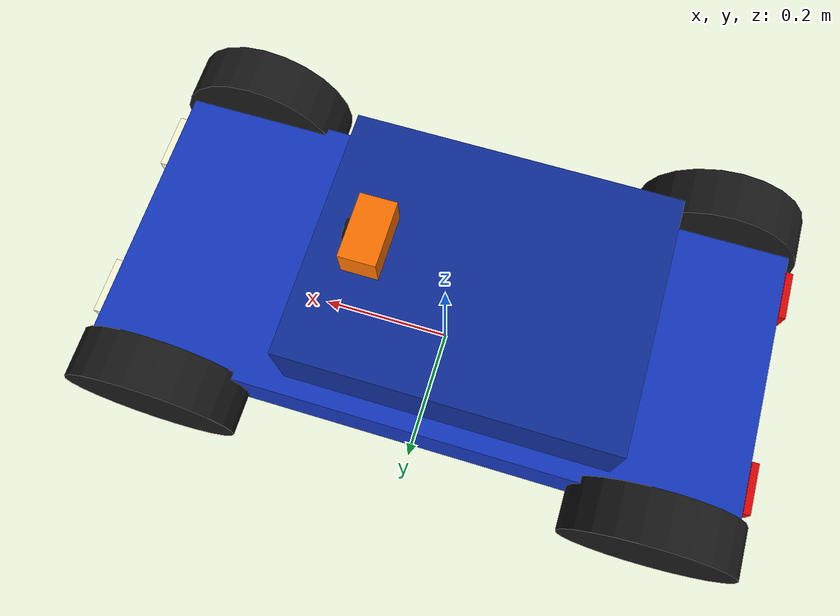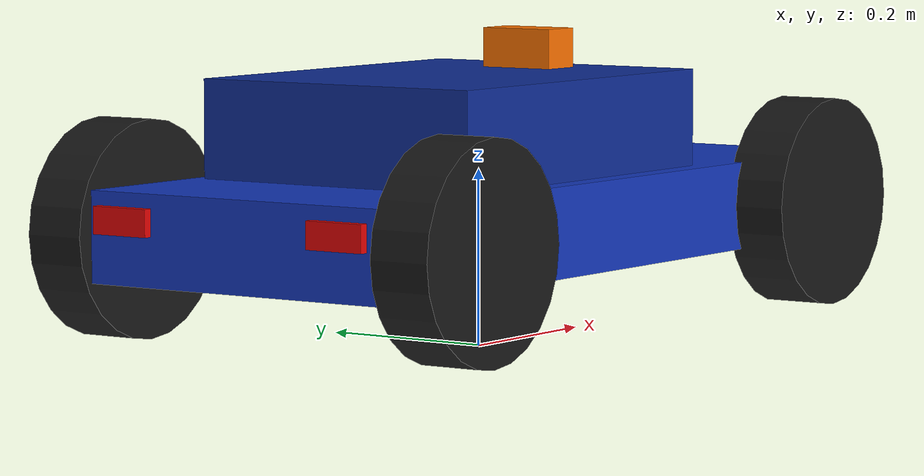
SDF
<?xml version="1.0"?>
<sdf version="1.6">
  <model name="ackermann_bot">
    <pose>0 0 0.15 0 0 0</pose>

    <!--CHASSIS  —  deep metallic blue body-->
    <link name="chassis">
      <inertial>
        <mass>15.0</mass>
        <inertia>
          <ixx>0.4</ixx><ixy>0</ixy><ixz>0</ixz>
          <iyy>0.9</iyy><iyz>0</iyz>
          <izz>1.0</izz>
        </inertia>
      </inertial>

      <visual name="chassis_vis">
        <geometry><box><size>0.9 0.4 0.1</size></box></geometry>
        <material>
          <ambient>0.05 0.15 0.55 1</ambient>
          <diffuse>0.08 0.22 0.75 1</diffuse>
          <specular>0.4 0.4 0.6 1</specular>
        </material>
      </visual>

      <visual name="cabin_vis">
        <pose>-0.05 0 0.1 0 0 0</pose>
        <geometry><box><size>0.45 0.35 0.12</size></box></geometry>
        <material>
          <ambient>0.04 0.12 0.45 1</ambient>
          <diffuse>0.06 0.18 0.60 1</diffuse>
          <specular>0.5 0.5 0.7 1</specular>
        </material>
      </visual>

      <visual name="bumper_vis">
        <pose>0.46 0 -0.02 0 0 0</pose>
        <geometry><box><size>0.02 0.38 0.06</size></box></geometry>
        <material>
          <ambient>0.7 0.05 0.05 1</ambient>
          <diffuse>0.9 0.08 0.08 1</diffuse>
        </material>
      </visual>

      <visual name="headlight_l">
        <pose>0.46 0.12 0.02 0 0 0</pose>
        <geometry><box><size>0.01 0.08 0.04</size></box></geometry>
        <material>
          <ambient>1.0 1.0 0.85 1</ambient>
          <diffuse>1.0 1.0 0.85 1</diffuse>
          <emissive>0.8 0.8 0.5 1</emissive>
        </material>
      </visual>

      <visual name="headlight_r">
        <pose>0.46 -0.12 0.02 0 0 0</pose>
        <geometry><box><size>0.01 0.08 0.04</size></box></geometry>
        <material>
          <ambient>1.0 1.0 0.85 1</ambient>
          <diffuse>1.0 1.0 0.85 1</diffuse>
          <emissive>0.8 0.8 0.5 1</emissive>
        </material>
      </visual>

      <visual name="brake_l">
        <pose>-0.46 0.14 0.02 0 0 0</pose>
        <geometry><box><size>0.01 0.07 0.03</size></box></geometry>
        <material>
          <ambient>0.9 0.02 0.02 1</ambient>
          <diffuse>0.9 0.02 0.02 1</diffuse>
          <emissive>0.6 0.0 0.0 1</emissive>
        </material>
      </visual>

      <visual name="brake_r">
        <pose>-0.46 -0.14 0.02 0 0 0</pose>
        <geometry><box><size>0.01 0.07 0.03</size></box></geometry>
        <material>
          <ambient>0.9 0.02 0.02 1</ambient>
          <diffuse>0.9 0.02 0.02 1</diffuse>
          <emissive>0.6 0.0 0.0 1</emissive>
        </material>
      </visual>

      <collision name="chassis_col">
        <geometry><box><size>0.9 0.4 0.1</size></box></geometry>
      </collision>

      <sensor name="imu" type="imu">
        <always_on>true</always_on>
        <update_rate>100</update_rate>
        <topic>/imu/data</topic>
        <ignition_frame_id>chassis</ignition_frame_id>
      </sensor>
    </link>

    <!--REAR-LEFT WHEEL-->
    <link name="rear_left_wheel">
      <pose>-0.35 0.225 0 -1.5707 0 0</pose>
      <inertial>
        <mass>1.5</mass>
        <inertia><ixx>0.01</ixx><ixy>0</ixy><ixz>0</ixz>
                 <iyy>0.01</iyy><iyz>0</iyz><izz>0.02</izz></inertia>
      </inertial>
      <visual name="tyre">
        <geometry><cylinder><radius>0.12</radius><length>0.07</length></cylinder></geometry>
        <material>
          <ambient>0.08 0.08 0.08 1</ambient>
          <diffuse>0.10 0.10 0.10 1</diffuse>
          <specular>0.15 0.15 0.15 1</specular>
        </material>
      </visual>
      <visual name="rim">
        <pose>0 0 0.01 0 0 0</pose>
        <geometry><cylinder><radius>0.07</radius><length>0.005</length></cylinder></geometry>
        <material>
          <ambient>0.7 0.7 0.75 1</ambient>
          <diffuse>0.8 0.8 0.85 1</diffuse>
          <specular>0.9 0.9 0.9 1</specular>
        </material>
      </visual>
      <collision name="c">
        <geometry><cylinder><radius>0.12</radius><length>0.07</length></cylinder></geometry>
        <surface><friction><ode><mu>1.0</mu><mu2>1.0</mu2></ode></friction></surface>
      </collision>
    </link>

    <joint name="rear_left_wheel_joint" type="revolute">
      <parent>chassis</parent><child>rear_left_wheel</child>
      <axis><xyz>0 0 1</xyz>
        <limit><lower>-1e16</lower><upper>1e16</upper></limit>
      </axis>
    </joint>

    <!--REAR-RIGHT WHEEL-->
    <link name="rear_right_wheel">
      <pose>-0.35 -0.225 0 -1.5707 0 0</pose>
      <inertial>
        <mass>1.5</mass>
        <inertia><ixx>0.01</ixx><ixy>0</ixy><ixz>0</ixz>
                 <iyy>0.01</iyy><iyz>0</iyz><izz>0.02</izz></inertia>
      </inertial>
      <visual name="tyre">
        <geometry><cylinder><radius>0.12</radius><length>0.07</length></cylinder></geometry>
        <material>
          <ambient>0.08 0.08 0.08 1</ambient>
          <diffuse>0.10 0.10 0.10 1</diffuse>
          <specular>0.15 0.15 0.15 1</specular>
        </material>
      </visual>
      <visual name="rim">
        <pose>0 0 -0.01 0 0 0</pose>
        <geometry><cylinder><radius>0.07</radius><length>0.005</length></cylinder></geometry>
        <material>
          <ambient>0.7 0.7 0.75 1</ambient>
          <diffuse>0.8 0.8 0.85 1</diffuse>
          <specular>0.9 0.9 0.9 1</specular>
        </material>
      </visual>
      <collision name="c">
        <geometry><cylinder><radius>0.12</radius><length>0.07</length></cylinder></geometry>
        <surface><friction><ode><mu>1.0</mu><mu2>1.0</mu2></ode></friction></surface>
      </collision>
    </link>

    <joint name="rear_right_wheel_joint" type="revolute">
      <parent>chassis</parent><child>rear_right_wheel</child>
      <axis><xyz>0 0 1</xyz>
        <limit><lower>-1e16</lower><upper>1e16</upper></limit>
      </axis>
    </joint>

    <!-- FRONT-LEFT STEER + WHEEL-->
    <link name="front_left_steer_link">
      <pose>0.35 0.225 0 0 0 0</pose>
      <inertial>
        <mass>0.1</mass>
        <inertia><ixx>0.001</ixx><ixy>0</ixy><ixz>0</ixz>
                 <iyy>0.001</iyy><iyz>0</iyz><izz>0.001</izz></inertia>
      </inertial>
    </link>

    <joint name="front_left_steer_joint" type="revolute">
      <parent>chassis</parent><child>front_left_steer_link</child>
      <axis><xyz>0 0 1</xyz>
        <limit><lower>-0.6</lower><upper>0.6</upper></limit>
      </axis>
    </joint>

    <link name="front_left_wheel">
      <pose>0.35 0.225 0 -1.5707 0 0</pose>
      <inertial>
        <mass>1.5</mass>
        <inertia><ixx>0.01</ixx><ixy>0</ixy><ixz>0</ixz>
                 <iyy>0.01</iyy><iyz>0</iyz><izz>0.02</izz></inertia>
      </inertial>
      <visual name="tyre">
        <geometry><cylinder><radius>0.12</radius><length>0.07</length></cylinder></geometry>
        <material>
          <ambient>0.08 0.08 0.08 1</ambient>
          <diffuse>0.10 0.10 0.10 1</diffuse>
          <specular>0.15 0.15 0.15 1</specular>
        </material>
      </visual>
      <visual name="rim">
        <pose>0 0 0.01 0 0 0</pose>
        <geometry><cylinder><radius>0.07</radius><length>0.005</length></cylinder></geometry>
        <material>
          <ambient>0.7 0.7 0.75 1</ambient>
          <diffuse>0.8 0.8 0.85 1</diffuse>
          <specular>0.9 0.9 0.9 1</specular>
        </material>
      </visual>
      <collision name="c">
        <geometry><cylinder><radius>0.12</radius><length>0.07</length></cylinder></geometry>
        <surface><friction><ode><mu>1.0</mu><mu2>1.0</mu2></ode></friction></surface>
      </collision>
    </link>

    <joint name="front_left_wheel_joint" type="revolute">
      <parent>front_left_steer_link</parent><child>front_left_wheel</child>
      <axis><xyz>0 0 1</xyz>
        <limit><lower>-1e16</lower><upper>1e16</upper></limit>
      </axis>
    </joint>

    <!-- FRONT-RIGHT STEER + WHEEL -->
    <link name="front_right_steer_link">
      <pose>0.35 -0.225 0 0 0 0</pose>
      <inertial>
        <mass>0.1</mass>
        <inertia><ixx>0.001</ixx><ixy>0</ixy><ixz>0</ixz>
                 <iyy>0.001</iyy><iyz>0</iyz><izz>0.001</izz></inertia>
      </inertial>
    </link>

    <joint name="front_right_steer_joint" type="revolute">
      <parent>chassis</parent><child>front_right_steer_link</child>
      <axis><xyz>0 0 1</xyz>
        <limit><lower>-0.6</lower><upper>0.6</upper></limit>
      </axis>
    </joint>

    <link name="front_right_wheel">
      <pose>0.35 -0.225 0 -1.5707 0 0</pose>
      <inertial>
        <mass>1.5</mass>
        <inertia><ixx>0.01</ixx><ixy>0</ixy><ixz>0</ixz>
                 <iyy>0.01</iyy><iyz>0</iyz><izz>0.02</izz></inertia>
      </inertial>
      <visual name="tyre">
        <geometry><cylinder><radius>0.12</radius><length>0.07</length></cylinder></geometry>
        <material>
          <ambient>0.08 0.08 0.08 1</ambient>
          <diffuse>0.10 0.10 0.10 1</diffuse>
          <specular>0.15 0.15 0.15 1</specular>
        </material>
      </visual>
      <visual name="rim">
        <pose>0 0 -0.01 0 0 0</pose>
        <geometry><cylinder><radius>0.07</radius><length>0.005</length></cylinder></geometry>
        <material>
          <ambient>0.7 0.7 0.75 1</ambient>
          <diffuse>0.8 0.8 0.85 1</diffuse>
          <specular>0.9 0.9 0.9 1</specular>
        </material>
      </visual>
      <collision name="c">
        <geometry><cylinder><radius>0.12</radius><length>0.07</length></cylinder></geometry>
        <surface><friction><ode><mu>1.0</mu><mu2>1.0</mu2></ode></friction></surface>
      </collision>
    </link>

    <joint name="front_right_wheel_joint" type="revolute">
      <parent>front_right_steer_link</parent><child>front_right_wheel</child>
      <axis><xyz>0 0 1</xyz>
        <limit><lower>-1e16</lower><upper>1e16</upper></limit>
      </axis>
    </joint>

    <!--ACKERMANN STEERING PLUGIN-->
    <plugin filename="libignition-gazebo-ackermann-steering-system.so"
            name="ignition::gazebo::systems::AckermannSteering">
      <left_joint>front_left_wheel_joint</left_joint>
      <right_joint>front_right_wheel_joint</right_joint>
      <left_steering_joint>front_left_steer_joint</left_steering_joint>
      <right_steering_joint>front_right_steer_joint</right_steering_joint>
      <kingpin_width>0.45</kingpin_width>
      <steering_limit>0.8</steering_limit>
      <wheel_base>0.70</wheel_base>
      <wheel_radius>0.12</wheel_radius>
      <min_velocity>-2</min_velocity>
      <max_velocity>2</max_velocity>
      <min_acceleration>-10</min_acceleration>
      <max_acceleration>10</max_acceleration>
      <topic>/cmd_vel</topic>
      <odom_topic>/odom</odom_topic>
      <tf_topic>/tf</tf_topic>
      <frame_id>odom</frame_id>
      <child_frame_id>chassis</child_frame_id>
    </plugin>

    <!-- Link 1: physical housing with all visuals, no sensor -->
    <link name="camera_mount">
      <pose>0.1 0 0.18 0 0 0</pose>
      <inertial>
        <mass>0.05</mass>
        <inertia><ixx>0.0001</ixx><ixy>0</ixy><ixz>0</ixz>
                 <iyy>0.0001</iyy><iyz>0</iyz><izz>0.0001</izz></inertia>
      </inertial>

      <!-- Orange housing -->
      <visual name="cam_body">
        <geometry><box><size>0.05 0.09 0.05</size></box></geometry>
        <material>
          <ambient>0.85 0.35 0.0 1</ambient>
          <diffuse>1.0  0.45 0.0 1</diffuse>
          <specular>0.3 0.3 0.3 1</specular>
        </material>
      </visual>

      <!-- Dark lens -->
      <visual name="cam_lens">
        <pose>0.026 0 0 0 1.5707 0</pose>
        <geometry><cylinder><radius>0.018</radius><length>0.01</length></cylinder></geometry>
        <material>
          <ambient>0.05 0.05 0.05 1</ambient>
          <diffuse>0.08 0.08 0.08 1</diffuse>
          <specular>0.6 0.6 0.6 1</specular>
        </material>
      </visual>
    </link>

    <joint name="camera_mount_joint" type="fixed">
      <parent>chassis</parent>
      <child>camera_mount</child>
    </joint>

    <!-- Link 2: empty anchor (same pattern as TurtleBot camera_link) -->
    <link name="camera_link"/>

    <joint name="camera_link_joint" type="fixed">
      <parent>camera_mount</parent>
      <child>camera_link</child>
      <pose>0.1 0 0.35 0 0 0</pose>
    </joint>

    <link name="camera_rgb_frame">
      <inertial>
        <mass>0.001</mass>
        <inertia><ixx>0.0001</ixx><ixy>0</ixy><ixz>0</ixz>
                 <iyy>0.0001</iyy><iyz>0</iyz><izz>0.0001</izz></inertia>
      </inertial>
      <pose>0 0 0.35 0.0 0.3 0</pose>

      <sensor name="front_camera" type="camera">
        <always_on>true</always_on>
        <visualize>true</visualize>
        <update_rate>30</update_rate>
        <topic>/camera/image_raw</topic>
        <camera_info_topic>/camera/camera_info</camera_info_topic>
        <ignition_frame_id>camera_rgb_frame</ignition_frame_id>
        <camera name="front_camera">
          <horizontal_fov>1.3962634</horizontal_fov>
          <image>
            <width>640</width>
            <height>480</height>
            <format>R8G8B8</format>
          </image>
          <clip><near>0.05</near><far>100</far></clip>
          <noise><type>gaussian</type><mean>0.0</mean><stddev>0.004</stddev></noise>
        </camera>
      </sensor>
    </link>

    <joint name="camera_rgb_joint" type="fixed">
      <parent>camera_link</parent>
      <child>camera_rgb_frame</child>
      <pose>0 0 0.35 -1.5707 0.6 0</pose>
    </joint>

    <!-- JOINT STATE PUBLISHER-->
    <plugin filename="libignition-gazebo-joint-state-publisher-system.so"
            name="ignition::gazebo::systems::JointStatePublisher">
      <topic>/joint_states</topic>
    </plugin>

  </model>
</sdf>
